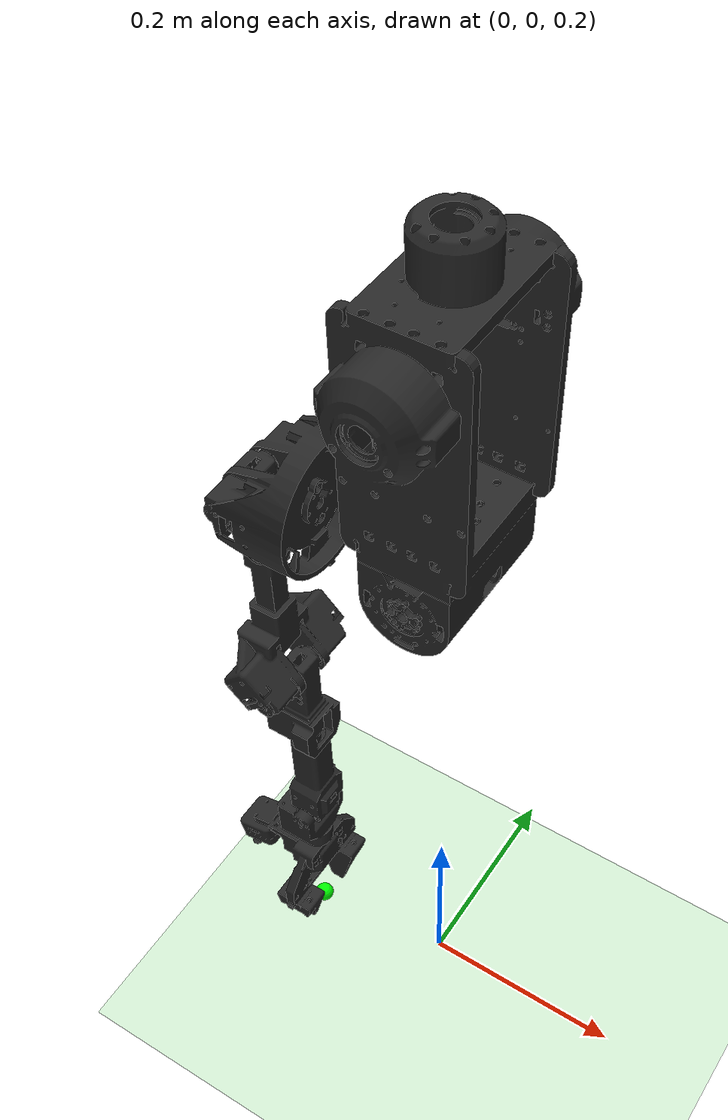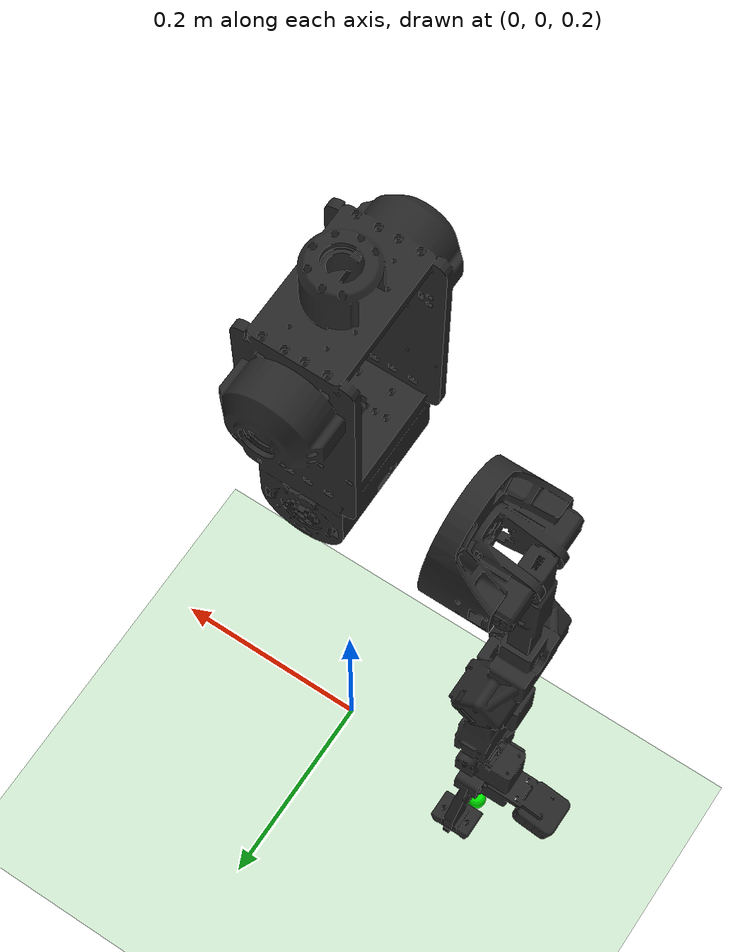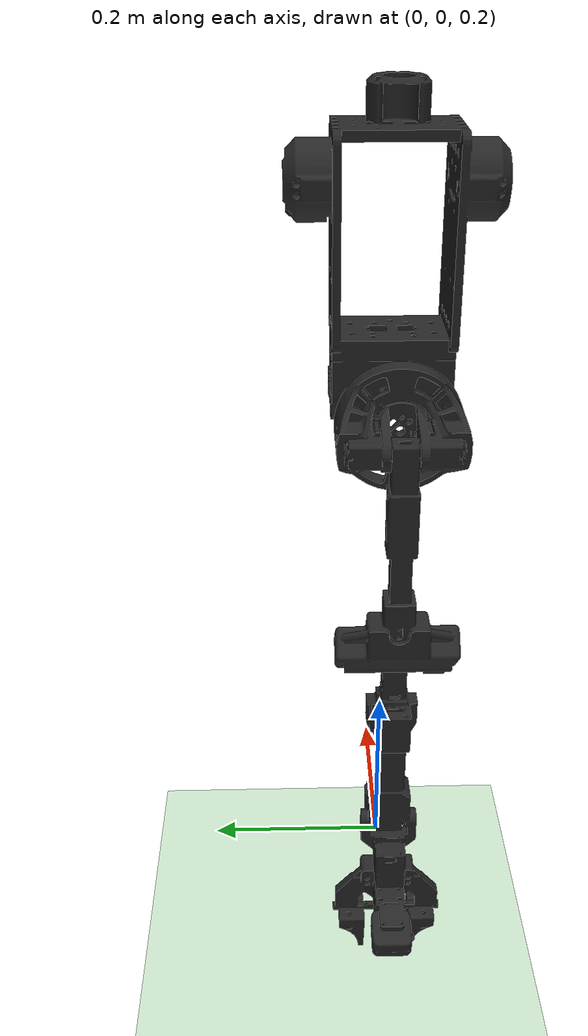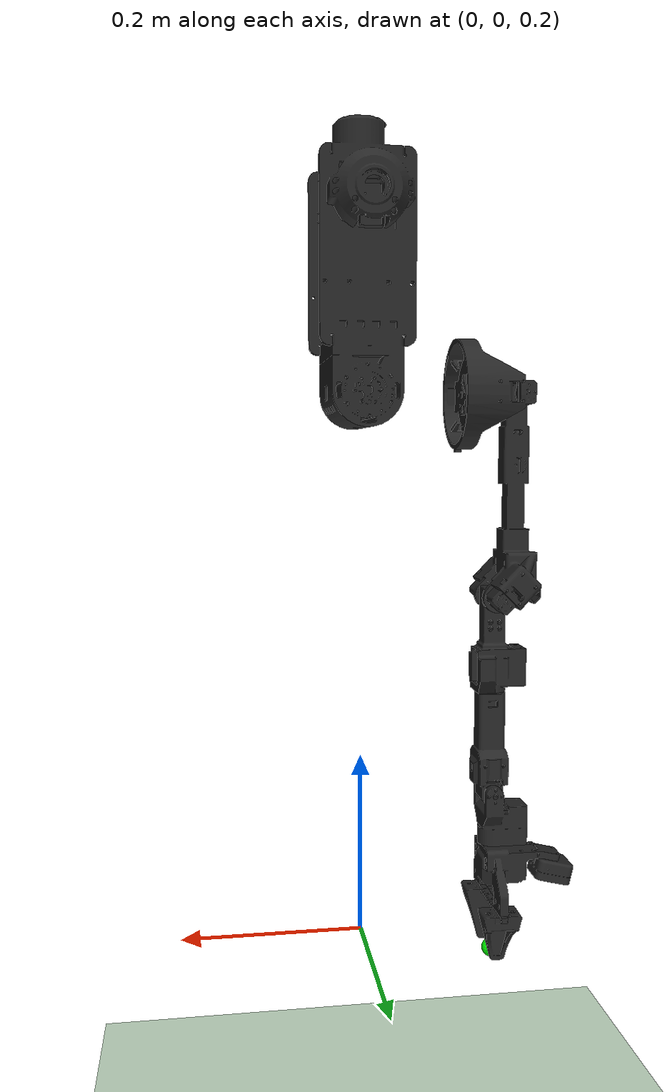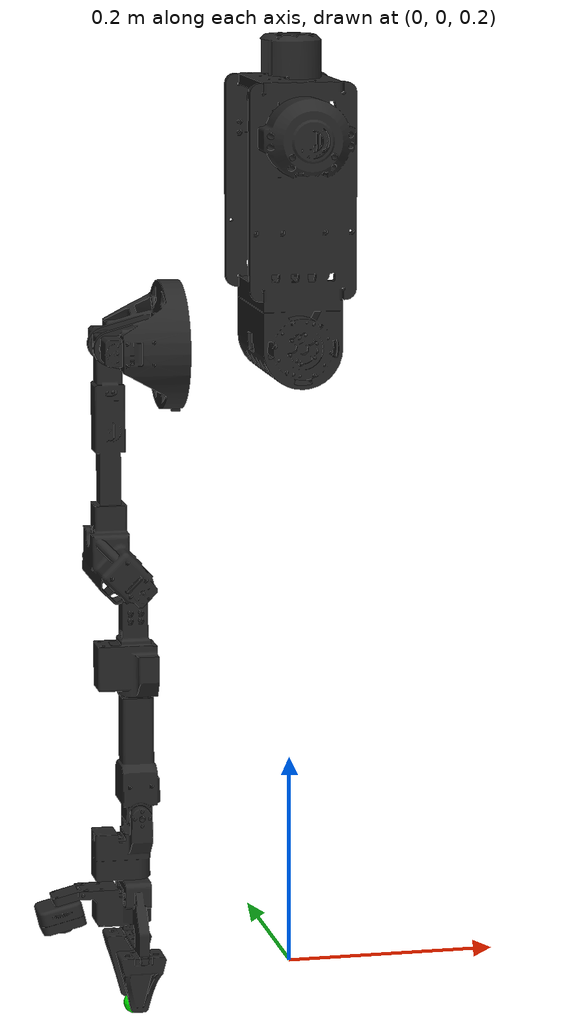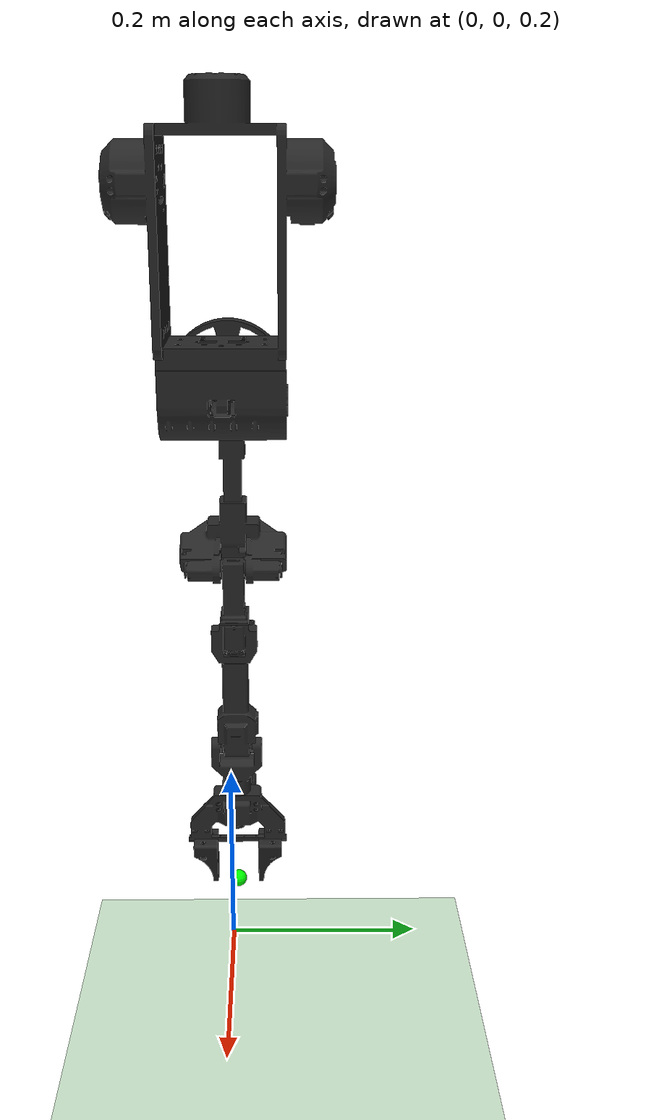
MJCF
<mujoco model="Alicia_D_v5_6_gripper_50mm">
  <compiler angle="radian" meshdir="../../meshes/Alicia_D_v5_6/vertical/"/>
  <asset>
    <mesh name="base_link" content_type="model/stl" file="base_link.STL"/>
    <mesh name="link1" content_type="model/stl" file="link1.STL"/>
    <mesh name="link2" content_type="model/stl" file="link2.STL"/>
    <mesh name="link3" content_type="model/stl" file="link3.STL"/>
    <mesh name="link4" content_type="model/stl" file="link4.STL"/>
    <mesh name="link5" content_type="model/stl" file="link5.STL"/>
    <mesh name="link6" content_type="model/stl" file="link6.STL"/>
    <mesh name="left_gripper" content_type="model/stl" file="left_gripper.STL"/>
    <mesh name="right_gripper" content_type="model/stl" file="right_gripper.STL"/>
    <texture builtin="gradient" height="100" rgb1=".4 .5 .6" rgb2="0 0 0" type="skybox" width="100" />
    <texture builtin="checker" height="100" name="texplane" rgb1="1 1 1" rgb2=".8 .9 1" type="2d" width="100" />
    <material name="MatPlane" reflectance="0.5" texrepeat="1 1" texture="texplane" texuniform="true" />
    <material name="white" rgba="1 1 1 1" shininess="0.5" specular="0.1" />
    <material name="black" rgba="0.15 0.15 0.15 1" shininess="0.2" specular="0.05" />
    <material name="invisible" rgba="1 1 1 0" shininess="0" specular="0" />
  </asset>

  <worldbody>
    <geom conaffinity="1" condim="3" contype="1" friction="1 .1 .1" group="2" material="MatPlane" name="floor" pos="0 0 0" rgba="0.8 0.9 0.8 1" size="10 10 0.125" type="plane" />
    <light castshadow="false" cutoff="100" diffuse="1 1 1" dir="-0 0 -1.3" directional="true" exponent="1" pos="0 0 1.3" specular=".1 .1 .1" />
    <body name="base_link" pos="0 0 0.8" quat="0 0 0 -1">
      <geom type="mesh" contype="0" conaffinity="0" group="1" density="0" rgba="0.15 0.15 0.15 1" mesh="base_link"/>
      <geom type="mesh" rgba="0.15 0.15 0.15 1" mesh="base_link"/>
      <body name="link1" pos="0.1295 0 0" quat="9.38184e-07 0.707108 -9.38187e-07 0.707105">
        <inertial pos="-0.00023059 -1.29106e-05 0.00303135" quat="0.494443 0.501274 -0.501534 0.502707" mass="0.195233" diaginertia="0.000339803 0.000258352 0.000149295"/>
        <joint name="Joint1" pos="0 0 0" axis="0 0 -1" range="-2.749 2.749" actuatorfrcrange="-5 5"/>
        <geom type="mesh" contype="0" conaffinity="0" group="1" density="0" rgba="0.15 0.15 0.15 1" mesh="link1"/>
        <geom type="mesh" rgba="0.15 0.15 0.15 1" mesh="link1"/>
        <body name="link2" pos="0 0 0.04287" quat="0.707107 -0.707107 0 0">
          <inertial pos="-0.150589 0.000866069 -0.000650951" quat="0.680967 0.18776 0.185184 0.683182" mass="0.207034" diaginertia="0.00020571 0.000131041 0.000119814"/>
          <joint name="Joint2" pos="0 0 0" axis="0 0 1" range="-0.5 3.14159" actuatorfrcrange="-5 5"/>
          <geom type="mesh" contype="0" conaffinity="0" group="1" density="0" rgba="0.15 0.15 0.15 1" mesh="link2"/>
          <geom type="mesh" rgba="0.15 0.15 0.15 1" mesh="link2"/>
          <body name="link3" pos="-0.223671 0.0224916 -5e-05" quat="0.707107 0 0 -0.707107">
            <inertial pos="0.00248146 -0.0557864 0.000269731" quat="0.50513 0.478685 -0.468559 0.544203" mass="0.0845576" diaginertia="8.09969e-05 7.62963e-05 2.81294e-05"/>
            <joint name="Joint3" pos="0 0 0" axis="0 0 1" range="-2.5 0.8" actuatorfrcrange="-5 5"/>
            <geom type="mesh" contype="0" conaffinity="0" group="1" density="0" rgba="0.15 0.15 0.15 1" mesh="link3"/>
            <geom type="mesh" rgba="0.15 0.15 0.15 1" mesh="link3"/>
            <body name="link4" pos="-0.00211 -0.099 0.0002" quat="0.707107 -0.707107 0 0">
              <inertial pos="-0.000298364 -0.000601364 -0.065974" quat="0.99997 -0.000404159 0.00701294 0.0032982" mass="0.0653696" diaginertia="7.0311e-05 6.8747e-05 1.6812e-05"/>
              <joint name="Joint4" pos="0 0 0" axis="0 0 1" range="-2.79 2.79" actuatorfrcrange="-5 5"/>
              <geom type="mesh" contype="0" conaffinity="0" group="1" density="0" rgba="0.15 0.15 0.15 1" mesh="link4"/>
              <geom type="mesh" rgba="0.15 0.15 0.15 1" mesh="link4"/>
              <body name="link5" pos="0 -0.0005 -0.12235" quat="0 0 0.707107 0.707107">
                <inertial pos="-0.0113684 -0.0308687 0.000870453" quat="0.600148 -0.014759 -0.0142335 0.799626" mass="0.0507639" diaginertia="2.56871e-05 1.81869e-05 1.72553e-05"/>
                <joint name="Joint5" pos="0 0 0" axis="0 0 -1" range="-1.57 1.57" actuatorfrcrange="-5 5"/>
                <geom type="mesh" contype="0" conaffinity="0" group="1" density="0" rgba="0.15 0.15 0.15 1" mesh="link5"/>
                <geom type="mesh" rgba="0.15 0.15 0.15 1" mesh="link5"/>
                <body name="link6" pos="-0.00385 -0.0575 0.001" quat="0.707107 0.707107 0 0">
                  <inertial pos="-0.0274898 -1.78841e-05 0.0342551" quat="0.394189 0.394197 -0.586837 0.587235" mass="0.130365" diaginertia="8.46616e-05 7.44396e-05 3.53175e-05"/>
                  <joint name="Joint6" pos="0 0 0" axis="0 0 -1" range="-3.14159 3.14159" actuatorfrcrange="-5 5"/>
                  <geom type="mesh" contype="0" conaffinity="0" group="1" density="0" rgba="0.15 0.15 0.15 1" mesh="link6"/>
                  <geom type="mesh" rgba="0.15 0.15 0.15 1" mesh="link6"/>
                  <body name="left_gripper" pos="0.0002 -0.0255 0.13098" quat="0 0 0.707107 0.707107">
                    <inertial pos="1.54739e-08 -0.0434087 -0.0106558" quat="0.402879 0.581112 -0.581114 0.40287" mass="0.0256463" diaginertia="8.50963e-06 6.46826e-06 4.6607e-06"/>
                    <joint name="left_finger" pos="0 0 0" axis="0 0 1" type="slide" range="0 0.025" actuatorfrcrange="-5 5"/>
                    <geom type="mesh" contype="0" conaffinity="0" group="1" density="0" rgba="0.15 0.15 0.15 1" mesh="left_gripper"/>
                    <geom type="mesh" rgba="0.15 0.15 0.15 1" mesh="left_gripper"/>
                  </body>
                  <body name="right_gripper" pos="0.0002 0.0255 0.13098" quat="0.707107 -0.707107 0 0">
                    <inertial pos="1.54744e-08 0.0434087 0.0106558" quat="0.40287 0.581114 -0.581112 0.402879" mass="0.0256463" diaginertia="8.50963e-06 6.46826e-06 4.6607e-06"/>
                    <joint name="right_finger" pos="0 0 0" axis="0 0 1" type="slide" range="-0.025 0" actuatorfrcrange="-5 5"/>
                    <geom type="mesh" contype="0" conaffinity="0" group="1" density="0" rgba="0.15 0.15 0.15 1" mesh="right_gripper"/>
                    <geom type="mesh" rgba="0.15 0.15 0.15 1" mesh="right_gripper"/>
                  </body>
                  <body name="tool0" pos="0 0 0.13">
                    <inertial pos="0 0 0" quat="1 0 0 0" mass="0.001" diaginertia="1e-08 1e-08 1e-08"/>
                    <geom type="sphere" size="0.01" contype="0" conaffinity="0" group="1" density="0" rgba="0 1 0 1"/>
                    <site name="tool0_site" pos="0 0 0" size="0.01" type="sphere"/>
                  </body>
                </body>
              </body>
            </body>
          </body>
        </body>
      </body>
    </body>
  </worldbody>
  <contact>
    <exclude body1="base_link" body2="link1" />
    <exclude body1="link1" body2="link2" />
    <exclude body1="link2" body2="link3" />
    <exclude body1="link3" body2="link4" />
    <exclude body1="link4" body2="link5" />
    <exclude body1="link5" body2="link6" />
    <exclude body1="link6" body2="left_gripper" />
    <exclude body1="left_gripper" body2="right_gripper" />
  </contact>
</mujoco>
